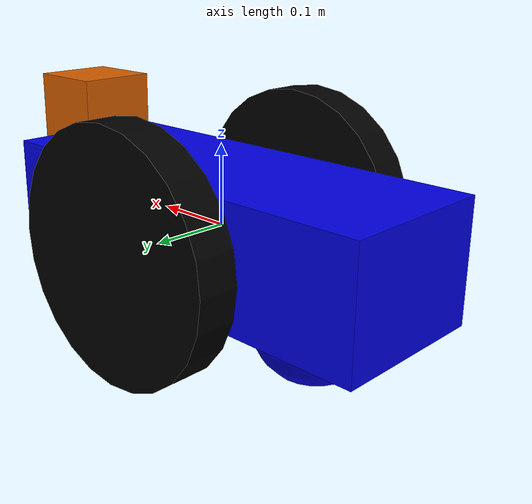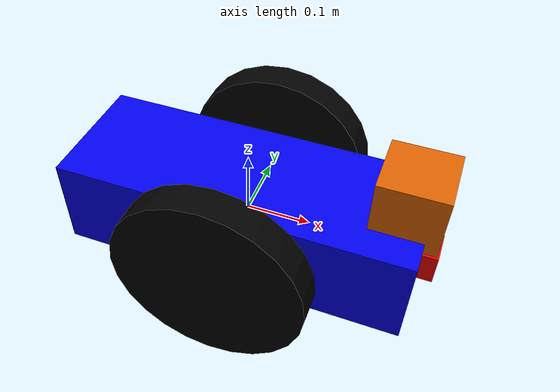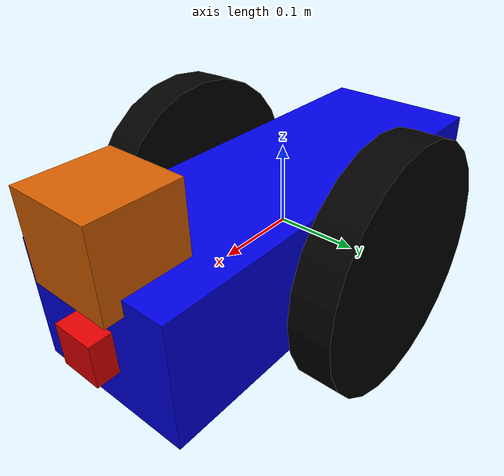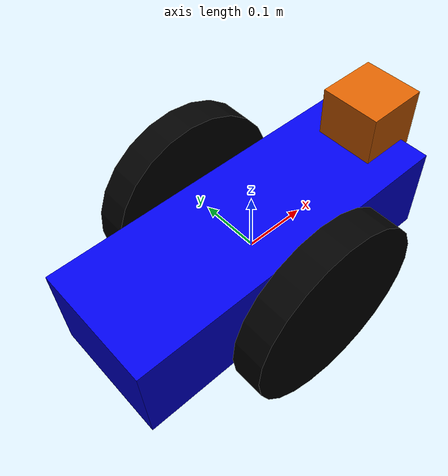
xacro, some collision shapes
<?xml version="1.0" ?>
<robot name="my_robot" xmlns:xacro="http://www.ros.org/wiki/xacro">
  <xacro:include filename="$(find my_robot)/urdf/my_robot.gazebo" />
  <xacro:include filename="$(find my_robot)/urdf/material_color.xacro" />

  <!-- Constants -->

  <xacro:property name="chassis_length" value="0.55" />
  <xacro:property name="chassis_width" value="0.2" />
  <xacro:property name="chassis_height" value="0.15" />

  <xacro:property name="caster_radius" value="0.075" />

  <xacro:property name="wheel_radius" value="0.15" />
  <xacro:property name="wheel_thickness" value="0.05" />

  <xacro:property name="camera_length" value="0.05" />
  <xacro:property name="camera_width" value="0.05" />
  <xacro:property name="camera_height" value="0.05" />

  <xacro:property name="lidar_length" value="0.1" />
  <xacro:property name="lidar_width" value="0.1" />
  <xacro:property name="lidar_height" value="0.1" />

  <xacro:property name="ninety_degrees_in_radians" value="1.5707" />

  <!-- Links and Joints -->

  <link name="robot_footprint"></link>

  <joint name="robot_footprint_joint" type="fixed">
    <origin xyz="0 0 0" rpy="0 0 0" />
    <parent link="robot_footprint"/>
    <child link="chassis" />
  </joint>

  <link name='chassis'>
    <pose>0 0 0.1 0 0 0</pose>

    <inertial>
      <mass value="15.0"/>
      <origin xyz="0.0 0 0" rpy=" 0 0 0"/>
      <inertia
          ixx="0.1" ixy="0" ixz="0"
          iyy="0.1" iyz="0"
          izz="0.1"
      />
    </inertial>

    <collision name='collision'>
      <origin xyz="0 0 0" rpy=" 0 0 0"/>
      <geometry>
        <box size="${chassis_length} ${chassis_width} ${chassis_height}"/>
      </geometry>
    </collision>

    <visual name='chassis_visual'>
      <origin xyz="0 0 0" rpy=" 0 0 0"/>
      <geometry>
        <box size="${chassis_length} ${chassis_width} ${chassis_height}"/>
      </geometry>
      <material name="blue" />
    </visual>

    <collision name='back_caster_collision'>
      <origin xyz="-0.15 0 -${caster_radius}" rpy=" 0 0 0"/>
      <geometry>
        <sphere radius="${caster_radius - 0.001}"/>
      </geometry>
    </collision>

    <visual name='back_caster_visual'>
      <origin xyz="-0.15 0 -${caster_radius}" rpy=" 0 0 0"/>
      <geometry>
        <sphere radius="${caster_radius}"/>
      </geometry>
      <material name="blue" />
    </visual>

    <collision name='front_caster_collision'>
      <origin xyz="0.15 0 -${caster_radius}" rpy=" 0 0 0"/>
      <geometry>
        <sphere radius="${caster_radius - 0.001}"/>
      </geometry>
    </collision>

    <visual name='front_caster_visual'>
      <origin xyz="0.15 0 -${caster_radius}" rpy=" 0 0 0"/>
      <geometry>
        <sphere radius="${caster_radius}"/>
      </geometry>
      <material name="blue" />
    </visual>

  </link>

  <link name="left_wheel">
    <pose>0 0 ${wheel_radius} 0 0 0</pose>

    <inertial>
      <mass value="5.0"/>
      <origin xyz="0 0 0" rpy="0 ${ninety_degrees_in_radians} ${ninety_degrees_in_radians}"/>
      <inertia
          ixx="0.1" ixy="0" ixz="0"
          iyy="0.1" iyz="0"
          izz="0.1"
      />
    </inertial>

    <collision name='left_collision'>
      <origin xyz="0 0 0" rpy="0 ${ninety_degrees_in_radians} ${ninety_degrees_in_radians}"/>
      <geometry>
        <cylinder radius="${wheel_radius}" length="${wheel_thickness}"/>
      </geometry>
    </collision>

    <visual name='left_visual'>
      <origin xyz="0 0 0" rpy="0 ${ninety_degrees_in_radians} ${ninety_degrees_in_radians}"/>
      <geometry>
        <cylinder radius="${wheel_radius}" length="${wheel_thickness}"/>
      </geometry>
      <material name="black" />
    </visual>
  </link>

  <joint type="continuous" name="left_wheel_hinge">
    <origin xyz="0 ${wheel_radius} 0" rpy="0 0 0"/>
    <child link="left_wheel"/>
    <parent link="chassis"/>
    <axis xyz="0 1 0" rpy="0 0 0"/>
    <limit effort="10000" velocity="1000"/>
    <dynamics damping="1.0" friction="1.0"/>
  </joint>

  <link name="right_wheel">
    <pose>0 0 ${wheel_radius} 0 0 0</pose>

    <inertial>
      <mass value="5.0"/>
      <origin xyz="0 0 0" rpy="0 ${ninety_degrees_in_radians} ${ninety_degrees_in_radians}"/>
      <inertia
          ixx="0.1" ixy="0" ixz="0"
          iyy="0.1" iyz="0"
          izz="0.1"
      />
    </inertial>

    <collision name='right_collision'>
      <origin xyz="0 0 0" rpy="0 ${ninety_degrees_in_radians} ${ninety_degrees_in_radians}"/>
      <geometry>
        <cylinder radius="${wheel_radius}" length="${wheel_thickness}"/>
      </geometry>
    </collision>

    <visual name='right_visual'>
      <origin xyz="0 0 0" rpy="0 ${ninety_degrees_in_radians} ${ninety_degrees_in_radians}"/>
      <geometry>
        <cylinder radius="${wheel_radius}" length="${wheel_thickness}"/>
      </geometry>
      <material name="black" />
    </visual>
  </link>

  <joint type="continuous" name="right_wheel_hinge">
    <origin xyz="0 -${wheel_radius} 0" rpy="0 0 0"/>
    <child link="right_wheel"/>
    <parent link="chassis"/>
    <axis xyz="0 1 0" rpy="0 0 0"/>
    <limit effort="10000" velocity="1000"/>
    <dynamics damping="1.0" friction="1.0"/>
  </joint>

  <link name="camera">
    <pose>0 0 0 0 0 0</pose>

    <inertial>
      <mass value="0.1"/>
      <origin xyz="0.05 0.05 0.05" rpy="0 0 0"/>
      <inertia ixx="1e-6" ixy="0" ixz="0" iyy="1e-6" iyz="0" izz="1e-6" />
    </inertial>

    <collision name='collision'>
      <origin xyz="0 0 0" rpy="0 0 0"/>
      <geometry>
        <box size="${camera_length} ${camera_width} ${camera_height}"/>
      </geometry>
    </collision>

    <visual name='visual'>
      <origin xyz="0 0 0" rpy="0 0 0"/>
      <geometry>
        <box size="${camera_length} ${camera_width} ${camera_height}"/>
      </geometry>
      <material name="red" />
    </visual>
  </link>

  <joint type="fixed" name="camera_joint">
    <axis xyz="0 1 0" rpy="0 0 0"/>
    <origin xyz="0.275 0 0" rpy="0 0 0"/>
    <parent link="chassis"/>
    <child link="camera"/>
  </joint>

  <link name="hokuyo">
    <pose>0 0 0 0 0 0</pose>

    <inertial>
      <mass value="1e-5"/>
      <origin xyz="0 0 0" rpy="0 0 0"/>
      <inertia ixx="1e-6" ixy="0" ixz="0" iyy="1e-6" iyz="0" izz="1e-6" />
    </inertial>

    <collision name='collision'>
      <origin xyz="0 0 0" rpy="0 0 0"/>
      <geometry>
        <box size="${lidar_length} ${lidar_width} ${lidar_height}"/>
      </geometry>
    </collision>

    <visual name='visual'>
      <origin xyz="0 0 0" rpy="0 0 0"/>
      <geometry>
        <mesh filename="package://my_robot/meshes/hokuyo.dae"/>
      </geometry>
    </visual>
  </link>

  <joint type="fixed" name="hokuyo_joint">
    <axis xyz="0 1 0" rpy="0 0 0"/>
    <origin xyz="0.245 0 0.107" rpy="0 0 0"/>
    <parent link="chassis"/>
    <child link="hokuyo"/>
  </joint>

  <joint name="camera_optical_joint" type="fixed">
    <origin xyz="0 0 0" rpy="-1.5707 0 -1.5707"/>
    <parent link="camera"/>
    <child link="camera_link_optical"/>
  </joint>

  <link name="camera_link_optical">
  </link>

</robot>

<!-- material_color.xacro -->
<robot>
    <material name="black">
        <color rgba="0.0 0.0 0.0 1.0"/>
    </material>

    <material name="red">
        <color rgba="0.9 0.0 0.0 1.0"/>
    </material>

    <material name="green">
        <color rgba="0.0 0.9 0.0 1.0"/>
    </material>

    <material name="blue">
        <color rgba="0.0 0.0 0.9 1.0"/>
    </material>

    <material name="white">
        <color rgba="1.0 1.0 1.0 1.0"/>
    </material>
</robot>
